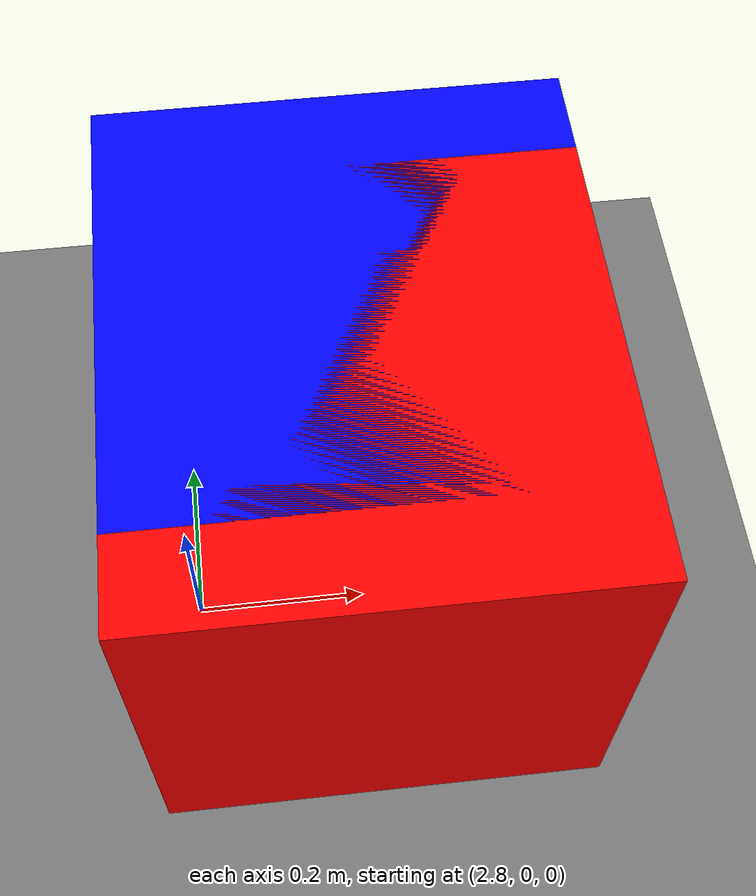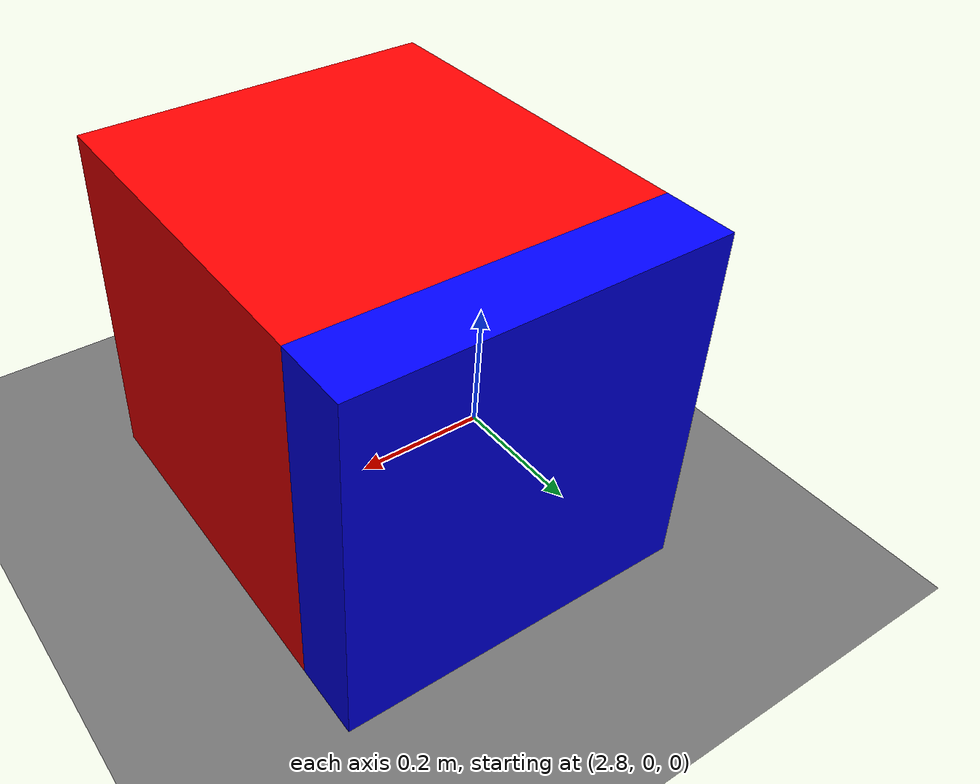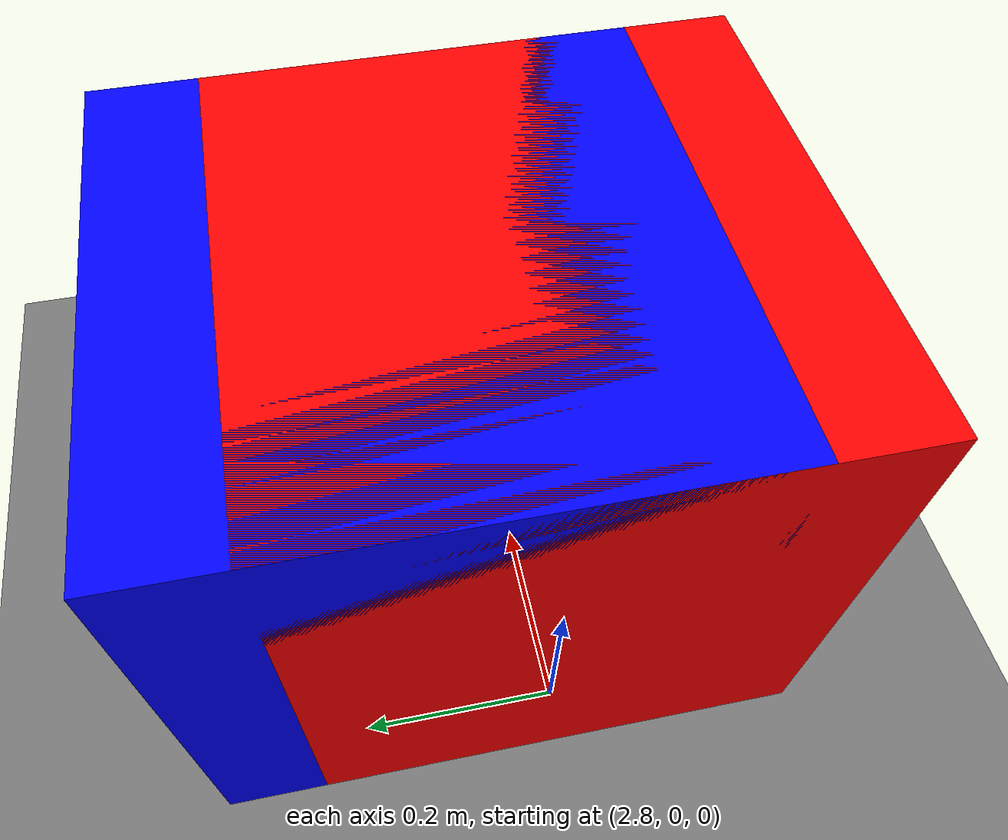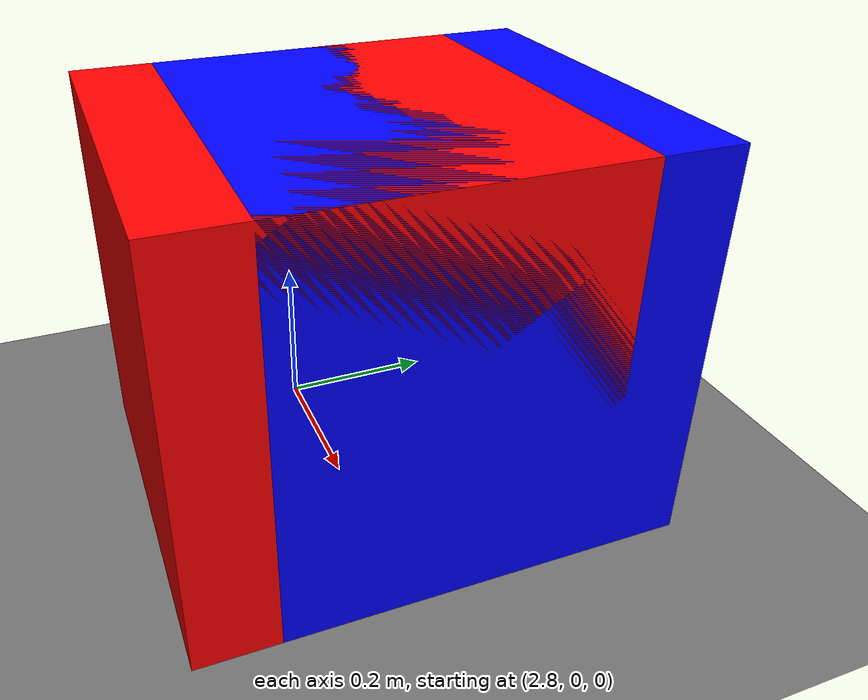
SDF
<?xml version="1.0" ?>
<sdf version="1.6">
  <world name="c7_occlusion">
    <scene>
      <ambient>0.7 0.7 0.7 1</ambient>
      <background>0.5 0.5 0.5 1</background>
    </scene>

    <include>
      <uri>model://sun</uri>
    </include>

    <model name="ground_plane_c7">
      <static>true</static>
      <link name="link">
        <collision name="collision">
          <geometry>
            <plane>
              <normal>0 0 1</normal>
              <size>30 30</size>
            </plane>
          </geometry>
        </collision>
        <visual name="visual">
          <geometry>
            <plane>
              <normal>0 0 1</normal>
              <size>30 30</size>
            </plane>
          </geometry>
          <material>
            <ambient>0.45 0.45 0.45 1</ambient>
            <diffuse>0.45 0.45 0.45 1</diffuse>
          </material>
        </visual>
      </link>
    </model>

    <model name="front_cube">
      <pose>3.0 0.0 0.25 0 0 0</pose>
      <static>false</static>
      <link name="link">
        <gravity>false</gravity>
        <collision name="collision">
          <geometry>
            <box><size>0.5 0.5 0.5</size></box>
          </geometry>
        </collision>
        <visual name="visual">
          <geometry>
            <box><size>0.5 0.5 0.5</size></box>
          </geometry>
          <material>
            <ambient>1 0 0 1</ambient>
            <diffuse>1 0 0 1</diffuse>
          </material>
        </visual>
      </link>
    </model>

    <model name="back_cube">
      <!-- Базовое смещение; тест переключает Y=0.10 (25%) и Y=0.20 (50%) -->
      <pose>3.0 0.10 0.25 0 0 0</pose>
      <static>false</static>
      <link name="link">
        <gravity>false</gravity>
        <collision name="collision">
          <geometry>
            <box><size>0.5 0.5 0.5</size></box>
          </geometry>
        </collision>
        <visual name="visual">
          <geometry>
            <box><size>0.5 0.5 0.5</size></box>
          </geometry>
          <material>
            <ambient>0 0 1 1</ambient>
            <diffuse>0 0 1 1</diffuse>
          </material>
        </visual>
      </link>
    </model>
  </world>
</sdf>
